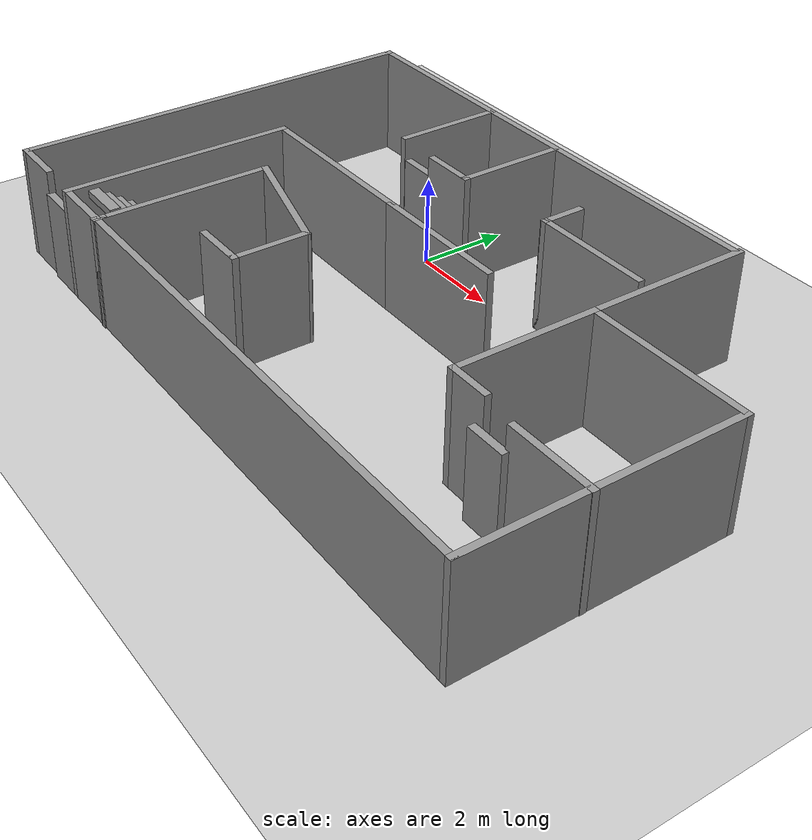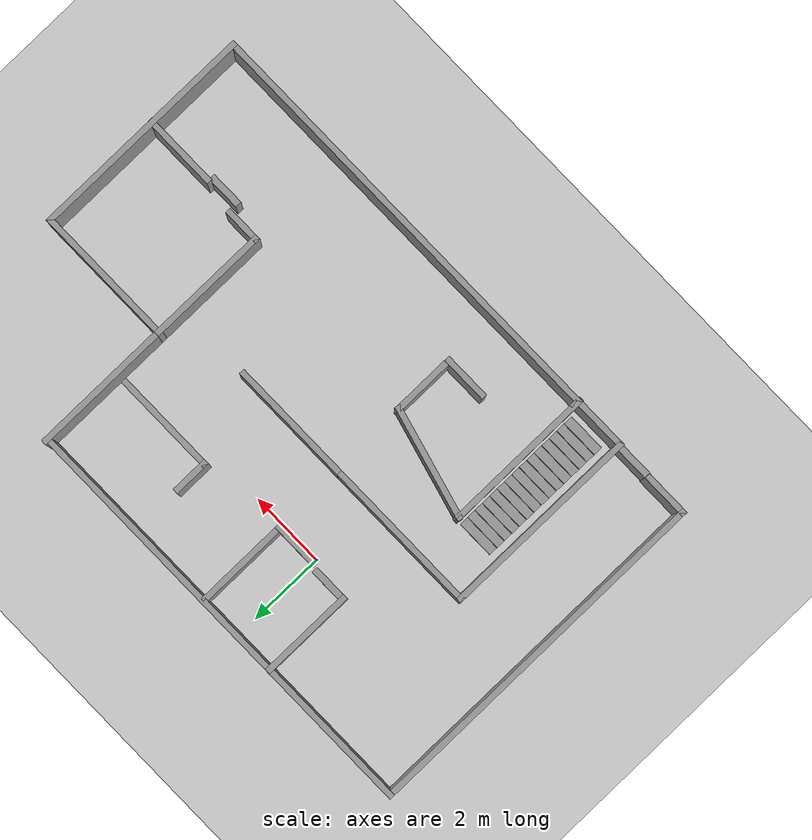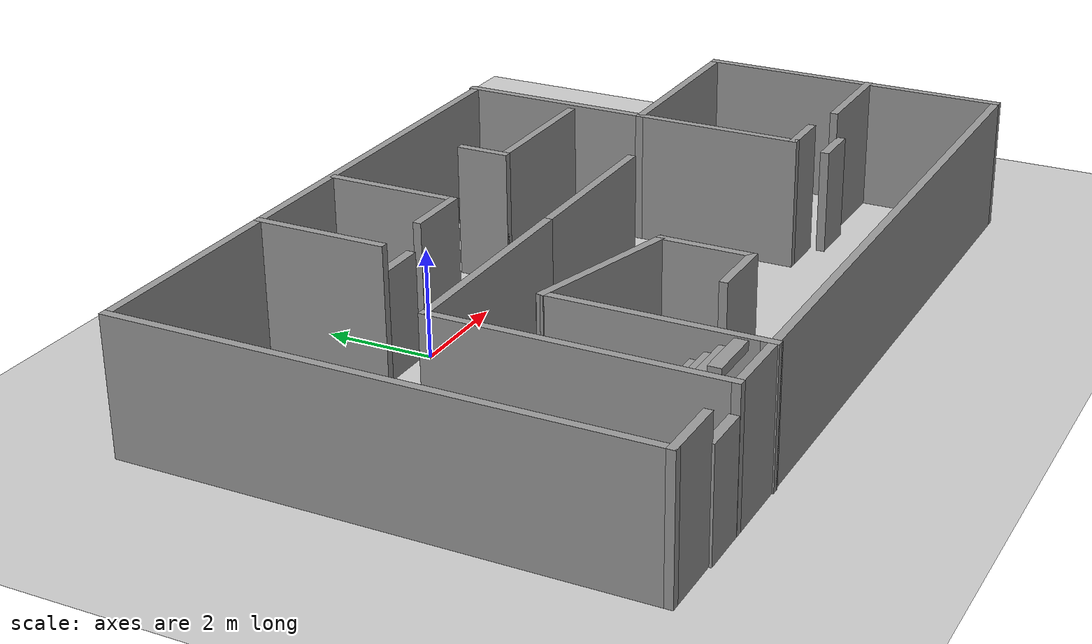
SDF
<sdf version="1.7">
 <world name="default">
  <light name="sun" type="directional">
   <pose>0 0 10 0 -0 0</pose>
   <diffuse>0.8 0.8 0.8 1</diffuse>
   <specular>0.2 0.2 0.2 1</specular>
   <attenuation>
    <range>1000</range>
    <constant>0.9</constant>
    <linear>0.01</linear>
    <quadratic>0.001</quadratic>
   </attenuation>
   <direction>-0.5 0.1 -0.9</direction>
   <spot><inner_angle>0</inner_angle><outer_angle>0</outer_angle><falloff>0</falloff></spot>
  </light>
  <model name="ground_plane">
   <static>1</static>
   <link name="link">
    <collision name="collision">
     <geometry><plane><normal>0 0 1</normal><size>100 100</size></plane></geometry>
     <surface>
      <contact><collide_bitmask>65535</collide_bitmask></contact>
      <friction><ode><mu>100</mu><mu2>50</mu2></ode></friction>
     </surface>
    </collision>
    <visual name="visual">
     <cast_shadows>0</cast_shadows>
     <geometry><plane><normal>0 0 1</normal><size>100 100</size></plane></geometry>
     <material>
      <script><uri>file://media/materials/scripts/gazebo.material</uri><name>Gazebo/Grey</name></script>
     </material>
    </visual>
   </link>
  </model>
  <gravity>0 0 -9.8</gravity>
  <magnetic_field>6e-06 2.3e-05 -4.2e-05</magnetic_field>
  <atmosphere type="adiabatic"/>
  <physics type="ode">
   <max_step_size>0.001</max_step_size>
   <real_time_factor>1</real_time_factor>
   <real_time_update_rate>1000</real_time_update_rate>
  </physics>
  <scene><ambient>0.4 0.4 0.4 1</ambient><background>0.7 0.7 0.7 1</background><shadows>1</shadows></scene>
  <audio><device>default</device></audio>
  <spherical_coordinates>
   <surface_model>EARTH_WGS84</surface_model>
   <latitude_deg>0</latitude_deg>
   <longitude_deg>0</longitude_deg>
   <elevation>0</elevation>
   <heading_deg>0</heading_deg>
  </spherical_coordinates>
  <model name="test_house2">
   <pose>2.39537 -2.14959 0 0 -0 0</pose>
   <link name="Door_1">
    <collision name="Door_1_Collision">
     <geometry><box><size>0.9 0.17 2</size></box></geometry>
     <pose>0 0 1 0 -0 0</pose>
    </collision>
    <visual name="Door_1_Visual">
     <pose>0 0 1 0 -0 0</pose>
     <geometry><box><size>0.9 0.17 2</size></box></geometry>
     <material>
      <script><uri>file://media/materials/scripts/gazebo.material</uri><name>Gazebo/Grey</name></script>
     </material>
    </visual>
    <pose>-5.90161 -4.70089 0 0 -0 0</pose>
   </link>
   <link name="Door_2">
    <collision name="Door_2_Collision">
     <geometry><box><size>0.9 0.17 2</size></box></geometry>
     <pose>0 0 1 0 -0 0</pose>
    </collision>
    <visual name="Door_2_Visual">
     <pose>0 0 1 0 -0 0</pose>
     <geometry><box><size>0.9 0.17 2</size></box></geometry>
     <material>
      <script><uri>file://media/materials/scripts/gazebo.material</uri><name>Gazebo/Grey</name></script>
     </material>
    </visual>
    <pose>-2.99692 2.34659 0 0 -0 0</pose>
   </link>
   <link name="Door_3">
    <collision name="Door_3_Collision">
     <geometry><box><size>0.9 0.17 2</size></box></geometry>
     <pose>0 0 1 0 -0 0</pose>
    </collision>
    <visual name="Door_3_Visual">
     <pose>0 0 1 0 -0 0</pose>
     <geometry><box><size>0.9 0.17 2</size></box></geometry>
     <material>
      <script><uri>file://media/materials/scripts/gazebo.material</uri><name>Gazebo/Grey</name></script>
     </material>
    </visual>
    <pose>5.21089 -2.25262 0 0 -0 0</pose>
   </link>
   <link name="Stairs_4">
    <visual name="Stairs_4_Visual_0">
     <pose>-4.62434 -0.973074 0.083333 0 -0 0</pose>
     <geometry><box><size>1 0.233333 0.166667</size></box></geometry>
     <material>
      <script><uri>file://media/materials/scripts/gazebo.material</uri><name>Gazebo/Grey</name></script>
      <ambient>1 1 1 1</ambient>
     </material>
     <meta><layer>0</layer></meta>
    </visual>
    <collision name="Stairs_4_Collision_0">
     <geometry><box><size>1 0.233333 0.166667</size></box></geometry>
     <pose>-4.62434 -0.973074 0.083333 0 -0 0</pose>
    </collision>
    <visual name="Stairs_4_Visual_1">
     <pose>-4.62434 -1.20641 0.25 0 -0 0</pose>
     <geometry><box><size>1 0.233333 0.166667</size></box></geometry>
     <material>
      <script><uri>file://media/materials/scripts/gazebo.material</uri><name>Gazebo/Grey</name></script>
      <ambient>1 1 1 1</ambient>
     </material>
     <meta><layer>0</layer></meta>
    </visual>
    <collision name="Stairs_4_Collision_1">
     <geometry><box><size>1 0.233333 0.166667</size></box></geometry>
     <pose>-4.62434 -1.20641 0.25 0 -0 0</pose>
    </collision>
    <visual name="Stairs_4_Visual_2">
     <pose>-4.62434 -1.43974 0.416667 0 -0 0</pose>
     <geometry><box><size>1 0.233333 0.166667</size></box></geometry>
     <material>
      <script><uri>file://media/materials/scripts/gazebo.material</uri><name>Gazebo/Grey</name></script>
      <ambient>1 1 1 1</ambient>
     </material>
     <meta><layer>0</layer></meta>
    </visual>
    <collision name="Stairs_4_Collision_2">
     <geometry><box><size>1 0.233333 0.166667</size></box></geometry>
     <pose>-4.62434 -1.43974 0.416667 0 -0 0</pose>
    </collision>
    <visual name="Stairs_4_Visual_3">
     <pose>-4.62434 -1.67307 0.583333 0 -0 0</pose>
     <geometry><box><size>1 0.233333 0.166667</size></box></geometry>
     <material>
      <script><uri>file://media/materials/scripts/gazebo.material</uri><name>Gazebo/Grey</name></script>
      <ambient>1 1 1 1</ambient>
     </material>
     <meta><layer>0</layer></meta>
    </visual>
    <collision name="Stairs_4_Collision_3">
     <geometry><box><size>1 0.233333 0.166667</size></box></geometry>
     <pose>-4.62434 -1.67307 0.583333 0 -0 0</pose>
    </collision>
    <visual name="Stairs_4_Visual_4">
     <pose>-4.62434 -1.90641 0.75 0 -0 0</pose>
     <geometry><box><size>1 0.233333 0.166667</size></box></geometry>
     <material>
      <script><uri>file://media/materials/scripts/gazebo.material</uri><name>Gazebo/Grey</name></script>
      <ambient>1 1 1 1</ambient>
     </material>
     <meta><layer>0</layer></meta>
    </visual>
    <collision name="Stairs_4_Collision_4">
     <geometry><box><size>1 0.233333 0.166667</size></box></geometry>
     <pose>-4.62434 -1.90641 0.75 0 -0 0</pose>
    </collision>
    <visual name="Stairs_4_Visual_5">
     <pose>-4.62434 -2.13974 0.916667 0 -0 0</pose>
     <geometry><box><size>1 0.233333 0.166667</size></box></geometry>
     <material>
      <script><uri>file://media/materials/scripts/gazebo.material</uri><name>Gazebo/Grey</name></script>
      <ambient>1 1 1 1</ambient>
     </material>
     <meta><layer>0</layer></meta>
    </visual>
    <collision name="Stairs_4_Collision_5">
     <geometry><box><size>1 0.233333 0.166667</size></box></geometry>
     <pose>-4.62434 -2.13974 0.916667 0 -0 0</pose>
    </collision>
    <visual name="Stairs_4_Visual_6">
     <pose>-4.62434 -2.37307 1.08333 0 -0 0</pose>
     <geometry><box><size>1 0.233333 0.166667</size></box></geometry>
     <material>
      <script><uri>file://media/materials/scripts/gazebo.material</uri><name>Gazebo/Grey</name></script>
      <ambient>1 1 1 1</ambient>
     </material>
     <meta><layer>0</layer></meta>
    </visual>
    <collision name="Stairs_4_Collision_6">
     <geometry><box><size>1 0.233333 0.166667</size></box></geometry>
     <pose>-4.62434 -2.37307 1.08333 0 -0 0</pose>
    </collision>
    <visual name="Stairs_4_Visual_7">
     <pose>-4.62434 -2.60641 1.25 0 -0 0</pose>
     <geometry><box><size>1 0.233333 0.166667</size></box></geometry>
     <material>
      <script><uri>file://media/materials/scripts/gazebo.material</uri><name>Gazebo/Grey</name></script>
      <ambient>1 1 1 1</ambient>
     </material>
     <meta><layer>0</layer></meta>
    </visual>
    <collision name="Stairs_4_Collision_7">
     <geometry><box><size>1 0.233333 0.166667</size></box></geometry>
     <pose>-4.62434 -2.60641 1.25 0 -0 0</pose>
    </collision>
    <visual name="Stairs_4_Visual_8">
     <pose>-4.62434 -2.83974 1.41667 0 -0 0</pose>
     <geometry><box><size>1 0.233333 0.166667</size></box></geometry>
     <material>
      <script><uri>file://media/materials/scripts/gazebo.material</uri><name>Gazebo/Grey</name></script>
      <ambient>1 1 1 1</ambient>
     </material>
     <meta><layer>0</layer></meta>
    </visual>
    <collision name="Stairs_4_Collision_8">
     <geometry><box><size>1 0.233333 0.166667</size></box></geometry>
     <pose>-4.62434 -2.83974 1.41667 0 -0 0</pose>
    </collision>
    <visual name="Stairs_4_Visual_9">
     <pose>-4.62434 -3.07307 1.58333 0 -0 0</pose>
     <geometry><box><size>1 0.233333 0.166667</size></box></geometry>
     <material>
      <script><uri>file://media/materials/scripts/gazebo.material</uri><name>Gazebo/Grey</name></script>
      <ambient>1 1 1 1</ambient>
     </material>
     <meta><layer>0</layer></meta>
    </visual>
    <collision name="Stairs_4_Collision_9">
     <geometry><box><size>1 0.233333 0.166667</size></box></geometry>
     <pose>-4.62434 -3.07307 1.58333 0 -0 0</pose>
    </collision>
    <visual name="Stairs_4_Visual_10">
     <pose>-4.62434 -3.30641 1.75 0 -0 0</pose>
     <geometry><box><size>1 0.233333 0.166667</size></box></geometry>
     <material>
      <script><uri>file://media/materials/scripts/gazebo.material</uri><name>Gazebo/Grey</name></script>
      <ambient>1 1 1 1</ambient>
     </material>
     <meta><layer>0</layer></meta>
    </visual>
    <collision name="Stairs_4_Collision_10">
     <geometry><box><size>1 0.233333 0.166667</size></box></geometry>
     <pose>-4.62434 -3.30641 1.75 0 -0 0</pose>
    </collision>
    <visual name="Stairs_4_Visual_11">
     <pose>-4.62434 -3.53974 1.91667 0 -0 0</pose>
     <geometry><box><size>1 0.233333 0.166667</size></box></geometry>
     <material>
      <script><uri>file://media/materials/scripts/gazebo.material</uri><name>Gazebo/Grey</name></script>
      <ambient>1 1 1 1</ambient>
     </material>
     <meta><layer>0</layer></meta>
    </visual>
    <collision name="Stairs_4_Collision_11">
     <geometry><box><size>1 0.233333 0.166667</size></box></geometry>
     <pose>-4.62434 -3.53974 1.91667 0 -0 0</pose>
    </collision>
    <visual name="Stairs_4_Visual_12">
     <pose>-4.62434 -3.77307 2.08333 0 -0 0</pose>
     <geometry><box><size>1 0.233333 0.166667</size></box></geometry>
     <material>
      <script><uri>file://media/materials/scripts/gazebo.material</uri><name>Gazebo/Grey</name></script>
      <ambient>1 1 1 1</ambient>
     </material>
     <meta><layer>0</layer></meta>
    </visual>
    <collision name="Stairs_4_Collision_12">
     <geometry><box><size>1 0.233333 0.166667</size></box></geometry>
     <pose>-4.62434 -3.77307 2.08333 0 -0 0</pose>
    </collision>
    <visual name="Stairs_4_Visual_13">
     <pose>-4.62434 -4.00641 2.25 0 -0 0</pose>
     <geometry><box><size>1 0.233333 0.166667</size></box></geometry>
     <material>
      <script><uri>file://media/materials/scripts/gazebo.material</uri><name>Gazebo/Grey</name></script>
      <ambient>1 1 1 1</ambient>
     </material>
     <meta><layer>0</layer></meta>
    </visual>
    <collision name="Stairs_4_Collision_13">
     <geometry><box><size>1 0.233333 0.166667</size></box></geometry>
     <pose>-4.62434 -4.00641 2.25 0 -0 0</pose>
    </collision>
    <visual name="Stairs_4_Visual_14">
     <pose>-4.62434 -4.23974 2.41667 0 -0 0</pose>
     <geometry><box><size>1 0.233333 0.166667</size></box></geometry>
     <material>
      <script><uri>file://media/materials/scripts/gazebo.material</uri><name>Gazebo/Grey</name></script>
      <ambient>1 1 1 1</ambient>
     </material>
     <meta><layer>0</layer></meta>
    </visual>
    <collision name="Stairs_4_Collision_14">
     <geometry><box><size>1 0.233333 0.166667</size></box></geometry>
     <pose>-4.62434 -4.23974 2.41667 0 -0 0</pose>
    </collision>
   </link>
   <link name="Wall_12">
    <collision name="Wall_12_Collision">
     <geometry><box><size>3.75 0.15 2.5</size></box></geometry>
     <pose>0 0 1.25 0 -0 0</pose>
    </collision>
    <visual name="Wall_12_Visual">
     <pose>0 0 1.25 0 -0 0</pose>
     <geometry><box><size>3.75 0.15 2.5</size></box></geometry>
     <material>
      <script><uri>file://media/materials/scripts/gazebo.material</uri><name>Gazebo/Grey</name></script>
      <ambient>1 1 1 1</ambient>
     </material>
     <meta><layer>0</layer></meta>
    </visual>
    <pose>3.879 2.93761 0 0 -0 1.5708</pose>
   </link>
   <link name="Wall_14">
    <collision name="Wall_14_Collision">
     <geometry><box><size>1.25 0.15 2.5</size></box></geometry>
     <pose>0 0 1.25 0 -0 0</pose>
    </collision>
    <visual name="Wall_14_Visual">
     <pose>0 0 1.25 0 -0 0</pose>
     <geometry><box><size>1.25 0.15 2.5</size></box></geometry>
     <material>
      <script><uri>file://media/materials/scripts/gazebo.material</uri><name>Gazebo/Grey</name></script>
      <ambient>1 1 1 1</ambient>
     </material>
     <meta><layer>0</layer></meta>
    </visual>
    <pose>-6.93935 -4.66488 0 0 -0 3.14159</pose>
   </link>
   <link name="Wall_15">
    <collision name="Wall_15_Collision">
     <geometry><box><size>9.5 0.15 2.5</size></box></geometry>
     <pose>0 0 1.25 0 -0 0</pose>
    </collision>
    <visual name="Wall_15_Visual">
     <pose>0 0 1.25 0 -0 0</pose>
     <geometry><box><size>9.5 0.15 2.5</size></box></geometry>
     <material>
      <script><uri>file://media/materials/scripts/gazebo.material</uri><name>Gazebo/Grey</name></script>
      <ambient>1 1 1 1</ambient>
     </material>
     <meta><layer>0</layer></meta>
    </visual>
    <pose>-7.48935 0.010116 0 0 -0 1.5708</pose>
   </link>
   <link name="Wall_16">
    <collision name="Wall_16_Collision">
     <geometry><box><size>11.5 0.15 2.5</size></box></geometry>
     <pose>0 0 1.25 0 -0 0</pose>
    </collision>
    <visual name="Wall_16_Visual">
     <pose>0 0 1.25 0 -0 0</pose>
     <geometry><box><size>11.5 0.15 2.5</size></box></geometry>
     <material>
      <script><uri>file://media/materials/scripts/gazebo.material</uri><name>Gazebo/Grey</name></script>
      <ambient>1 1 1 1</ambient>
     </material>
     <meta><layer>0</layer></meta>
    </visual>
    <pose>-1.81435 4.68512 0 0 -0 0</pose>
   </link>
   <link name="Wall_20">
    <collision name="Wall_20_Collision">
     <geometry><box><size>5.25 0.15 2.5</size></box></geometry>
     <pose>0 0 1.25 0 -0 0</pose>
    </collision>
    <visual name="Wall_20_Visual">
     <pose>0 0 1.25 0 -0 0</pose>
     <geometry><box><size>5.25 0.15 2.5</size></box></geometry>
     <material>
      <script><uri>file://media/materials/scripts/gazebo.material</uri><name>Gazebo/Grey</name></script>
      <ambient>1 1 1 1</ambient>
     </material>
     <meta><layer>0</layer></meta>
    </visual>
    <pose>-5.371 -2.1624 0 0 -0 1.5708</pose>
   </link>
   <link name="Wall_23">
    <collision name="Wall_23_Collision">
     <geometry><box><size>0.3 0.15 2.5</size></box></geometry>
     <pose>0 0 1.25 0 -0 0</pose>
    </collision>
    <visual name="Wall_23_Visual">
     <pose>0 0 1.25 0 -0 0</pose>
     <geometry><box><size>0.3 0.15 2.5</size></box></geometry>
     <material>
      <script><uri>file://media/materials/scripts/gazebo.material</uri><name>Gazebo/Grey</name></script>
      <ambient>1 1 1 1</ambient>
     </material>
     <meta><layer>0</layer></meta>
    </visual>
    <pose>-3.98752 -4.66261 0 0 -0 -1.5708</pose>
   </link>
   <link name="Wall_24">
    <collision name="Wall_24_Collision">
     <geometry><box><size>4 0.15 2.5</size></box></geometry>
     <pose>0 0 1.25 0 -0 0</pose>
    </collision>
    <visual name="Wall_24_Visual">
     <pose>0 0 1.25 0 -0 0</pose>
     <geometry><box><size>4 0.15 2.5</size></box></geometry>
     <material>
      <script><uri>file://media/materials/scripts/gazebo.material</uri><name>Gazebo/Grey</name></script>
      <ambient>1 1 1 1</ambient>
     </material>
     <meta><layer>0</layer></meta>
    </visual>
    <pose>-3.98752 -2.81261 0 0 -0 1.5708</pose>
   </link>
   <link name="Wall_29">
    <collision name="Wall_29_Collision">
     <geometry><box><size>4.25 0.15 2.5</size></box></geometry>
     <pose>0 0 1.25 0 -0 0</pose>
    </collision>
    <visual name="Wall_29_Visual">
     <pose>0 0 1.25 0 -0 0</pose>
     <geometry><box><size>4.25 0.15 2.5</size></box></geometry>
     <material>
      <script><uri>file://media/materials/scripts/gazebo.material</uri><name>Gazebo/Grey</name></script>
      <ambient>1 1 1 1</ambient>
     </material>
     <meta><layer>0</layer></meta>
    </visual>
    <pose>-3.321 0.387605 0 0 -0 0</pose>
   </link>
   <link name="Wall_3">
    <collision name="Wall_3_Collision">
     <geometry><box><size>13 0.15 2.5</size></box></geometry>
     <pose>0 0 1.25 0 -0 0</pose>
    </collision>
    <visual name="Wall_3_Visual">
     <pose>0 0 1.25 0 -0 0</pose>
     <geometry><box><size>13 0.15 2.5</size></box></geometry>
     <material>
      <script><uri>file://media/materials/scripts/gazebo.material</uri><name>Gazebo/Grey</name></script>
      <ambient>1 1 1 1</ambient>
     </material>
     <meta><layer>0</layer></meta>
    </visual>
    <pose>1.054 -4.71239 0 0 -0 0</pose>
   </link>
   <link name="Wall_32">
    <collision name="Wall_32_Collision">
     <geometry><box><size>3 0.15 2.5</size></box></geometry>
     <pose>0 0 1.25 0 -0 0</pose>
    </collision>
    <visual name="Wall_32_Visual">
     <pose>0 0 1.25 0 -0 0</pose>
     <geometry><box><size>3 0.15 2.5</size></box></geometry>
     <material>
      <script><uri>file://media/materials/scripts/gazebo.material</uri><name>Gazebo/Grey</name></script>
      <ambient>1 1 1 1</ambient>
     </material>
     <meta><layer>0</layer></meta>
    </visual>
    <pose>-2.61108 -1.25642 0 0 -0 -0.261799</pose>
   </link>
   <link name="Wall_33">
    <collision name="Wall_33_Collision">
     <geometry><box><size>1.75 0.15 2.5</size></box></geometry>
     <pose>0 0 1.25 0 -0 0</pose>
    </collision>
    <visual name="Wall_33_Visual">
     <pose>0 0 1.25 0 -0 0</pose>
     <geometry><box><size>1.75 0.15 2.5</size></box></geometry>
     <material>
      <script><uri>file://media/materials/scripts/gazebo.material</uri><name>Gazebo/Grey</name></script>
      <ambient>1 1 1 1</ambient>
     </material>
     <meta><layer>0</layer></meta>
    </visual>
    <pose>-1.23463 -2.42524 0 0 -0 -1.5708</pose>
   </link>
   <link name="Wall_34">
    <collision name="Wall_34_Collision">
     <geometry><box><size>1.25 0.15 2.5</size></box></geometry>
     <pose>0 0 1.25 0 -0 0</pose>
    </collision>
    <visual name="Wall_34_Visual">
     <pose>0 0 1.25 0 -0 0</pose>
     <geometry><box><size>1.25 0.15 2.5</size></box></geometry>
     <material>
      <script><uri>file://media/materials/scripts/gazebo.material</uri><name>Gazebo/Grey</name></script>
      <ambient>1 1 1 1</ambient>
     </material>
     <meta><layer>0</layer></meta>
    </visual>
    <pose>-1.78463 -3.22524 0 0 -0 3.14159</pose>
   </link>
   <link name="Wall_36">
    <collision name="Wall_36_Collision">
     <geometry><box><size>2.5 0.15 2.5</size></box></geometry>
     <pose>0 0 1.25 0 -0 0</pose>
    </collision>
    <visual name="Wall_36_Visual">
     <pose>0 0 1.25 0 -0 0</pose>
     <geometry><box><size>2.5 0.15 2.5</size></box></geometry>
     <material>
      <script><uri>file://media/materials/scripts/gazebo.material</uri><name>Gazebo/Grey</name></script>
      <ambient>1 1 1 1</ambient>
     </material>
     <meta><layer>0</layer></meta>
    </visual>
    <pose>-1.29876 3.43581 0 0 -0 -1.5708</pose>
   </link>
   <link name="Wall_38">
    <collision name="Wall_38_Collision">
     <geometry><box><size>1 0.15 2.5</size></box></geometry>
     <pose>0 0 1.25 0 -0 0</pose>
    </collision>
    <visual name="Wall_38_Visual">
     <pose>0 0 1.25 0 -0 0</pose>
     <geometry><box><size>1 0.15 2.5</size></box></geometry>
     <material>
      <script><uri>file://media/materials/scripts/gazebo.material</uri><name>Gazebo/Grey</name></script>
      <ambient>1 1 1 1</ambient>
     </material>
     <meta><layer>0</layer></meta>
    </visual>
    <pose>0.965471 2.91219 0 0 -0 -1.5708</pose>
   </link>
   <link name="Wall_39">
    <collision name="Wall_39_Collision">
     <geometry><box><size>2.75 0.15 2.5</size></box></geometry>
     <pose>0 0 1.25 0 -0 0</pose>
    </collision>
    <visual name="Wall_39_Visual">
     <pose>0 0 1.25 0 -0 0</pose>
     <geometry><box><size>2.75 0.15 2.5</size></box></geometry>
     <material>
      <script><uri>file://media/materials/scripts/gazebo.material</uri><name>Gazebo/Grey</name></script>
      <ambient>1 1 1 1</ambient>
     </material>
     <meta><layer>0</layer></meta>
    </visual>
    <pose>2.26547 2.48719 0 0 -0 0</pose>
   </link>
   <link name="Wall_4">
    <collision name="Wall_4_Collision">
     <geometry><box><size>6 0.15 2.5</size></box></geometry>
     <pose>0 0 1.25 0 -0 0</pose>
    </collision>
    <visual name="Wall_4_Visual">
     <pose>0 0 1.25 0 -0 0</pose>
     <geometry><box><size>6 0.15 2.5</size></box></geometry>
     <material>
      <script><uri>file://media/materials/scripts/gazebo.material</uri><name>Gazebo/Grey</name></script>
      <ambient>1 1 1 1</ambient>
     </material>
     <meta><layer>0</layer></meta>
    </visual>
    <pose>7.479 -1.7874 0 0 -0 1.5708</pose>
   </link>
   <link name="Wall_41">
    <collision name="Wall_41_Collision">
     <geometry><box><size>3.25 0.15 2.5</size></box></geometry>
     <pose>0 0 1.25 0 -0 0</pose>
    </collision>
    <visual name="Wall_41_Visual">
     <pose>0 0 1.25 0 -0 0</pose>
     <geometry><box><size>3.25 0.15 2.5</size></box></geometry>
     <material>
      <script><uri>file://media/materials/scripts/gazebo.material</uri><name>Gazebo/Grey</name></script>
      <ambient>1 1 1 1</ambient>
     </material>
     <meta><layer>0</layer></meta>
    </visual>
    <pose>0.279002 0.387605 0 0 -0 0</pose>
   </link>
   <link name="Wall_45">
    <collision name="Wall_45_Collision">
     <geometry><box><size>2.5 0.15 2.5</size></box></geometry>
     <pose>0 0 1.25 0 -0 0</pose>
    </collision>
    <visual name="Wall_45_Visual">
     <pose>0 0 1.25 0 -0 0</pose>
     <geometry><box><size>2.5 0.15 2.5</size></box></geometry>
     <material>
      <script><uri>file://media/materials/scripts/gazebo.material</uri><name>Gazebo/Grey</name></script>
      <ambient>1 1 1 1</ambient>
     </material>
     <meta><layer>0</layer></meta>
    </visual>
    <pose>-3.49222 3.50657 0 0 -0 -1.5708</pose>
   </link>
   <link name="Wall_47">
    <collision name="Wall_47_Collision">
     <geometry><box><size>1.25 0.15 2.5</size></box></geometry>
     <pose>0 0 1.25 0 -0 0</pose>
    </collision>
    <visual name="Wall_47_Visual">
     <pose>0 0 1.25 0 -0 0</pose>
     <geometry><box><size>1.25 0.15 2.5</size></box></geometry>
     <material>
      <script><uri>file://media/materials/scripts/gazebo.material</uri><name>Gazebo/Grey</name></script>
      <ambient>1 1 1 1</ambient>
     </material>
     <meta><layer>0</layer></meta>
    </visual>
    <pose>-1.84875 2.26081 0 0 -0 3.14159</pose>
   </link>
   <link name="Wall_49">
    <collision name="Wall_49_Collision">
     <geometry><box><size>1 0.15 2.5</size></box></geometry>
     <pose>0 0 1.25 0 -0 0</pose>
    </collision>
    <visual name="Wall_49_Visual">
     <pose>0 0 1.25 0 -0 0</pose>
     <geometry><box><size>1 0.15 2.5</size></box></geometry>
     <material>
      <script><uri>file://media/materials/scripts/gazebo.material</uri><name>Gazebo/Grey</name></script>
      <ambient>1 1 1 1</ambient>
     </material>
     <meta><layer>0</layer></meta>
    </visual>
    <pose>4.304 -1.96239 0 0 -0 0</pose>
   </link>
   <link name="Wall_6">
    <collision name="Wall_6_Collision">
     <geometry><box><size>3.75 0.15 2.5</size></box></geometry>
     <pose>0 0 1.25 0 -0 0</pose>
    </collision>
    <visual name="Wall_6_Visual">
     <pose>0 0 1.25 0 -0 0</pose>
     <geometry><box><size>3.75 0.15 2.5</size></box></geometry>
     <material>
      <script><uri>file://media/materials/scripts/gazebo.material</uri><name>Gazebo/Grey</name></script>
      <ambient>1 1 1 1</ambient>
     </material>
     <meta><layer>0</layer></meta>
    </visual>
    <pose>5.679 1.1376 0 0 -0 3.14159</pose>
   </link>
   <link name="Wall_7">
    <collision name="Wall_7_Collision">
     <geometry><box><size>3.25 0.15 2.5</size></box></geometry>
     <pose>0 0 1.25 0 -0 0</pose>
    </collision>
    <visual name="Wall_7_Visual">
     <pose>0 0 1.25 0 -0 0</pose>
     <geometry><box><size>3.25 0.15 2.5</size></box></geometry>
     <material>
      <script><uri>file://media/materials/scripts/gazebo.material</uri><name>Gazebo/Grey</name></script>
      <ambient>1 1 1 1</ambient>
     </material>
     <meta><layer>0</layer></meta>
    </visual>
    <pose>3.879 -0.412395 0 0 -0 -1.5708</pose>
   </link>
   <link name="Wall_9">
    <collision name="Wall_9_Collision">
     <geometry><box><size>2 0.15 2.5</size></box></geometry>
     <pose>0 0 1.25 0 -0 0</pose>
    </collision>
    <visual name="Wall_9_Visual">
     <pose>0 0 1.25 0 -0 0</pose>
     <geometry><box><size>2 0.15 2.5</size></box></geometry>
     <material>
      <script><uri>file://media/materials/scripts/gazebo.material</uri><name>Gazebo/Grey</name></script>
      <ambient>1 1 1 1</ambient>
     </material>
     <meta><layer>0</layer></meta>
    </visual>
    <pose>6.56435 -2.11763 0 0 -0 0</pose>
   </link>
   <static>1</static>
  </model>
 </world>
</sdf>
